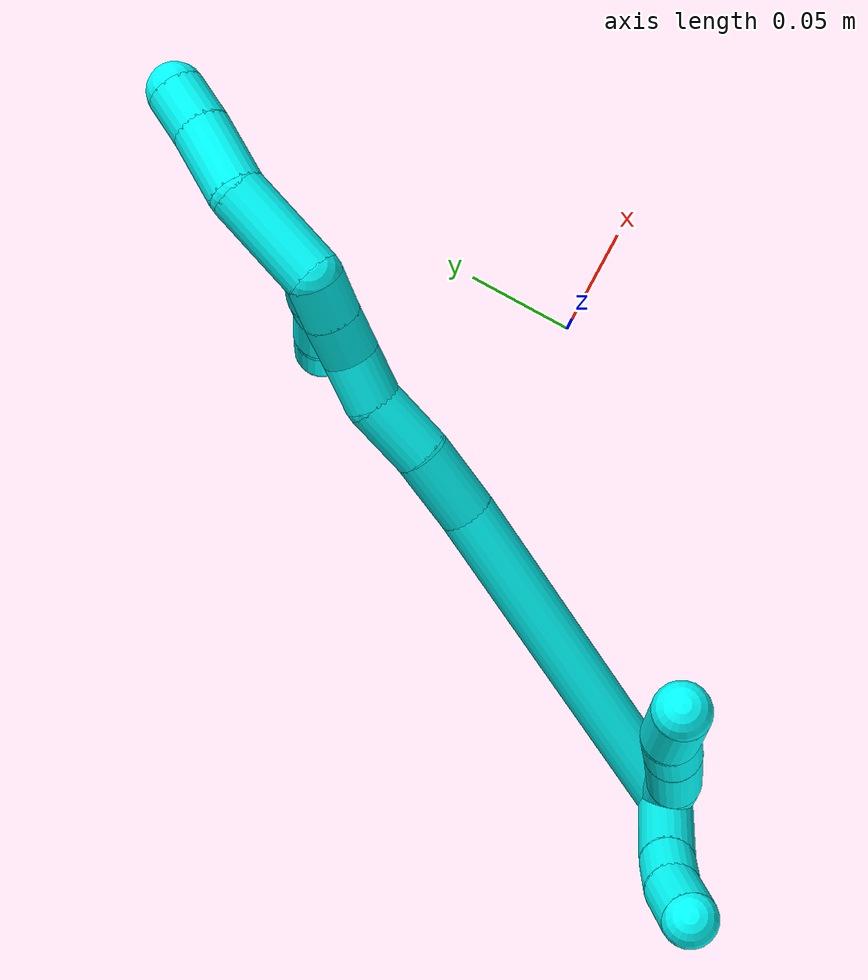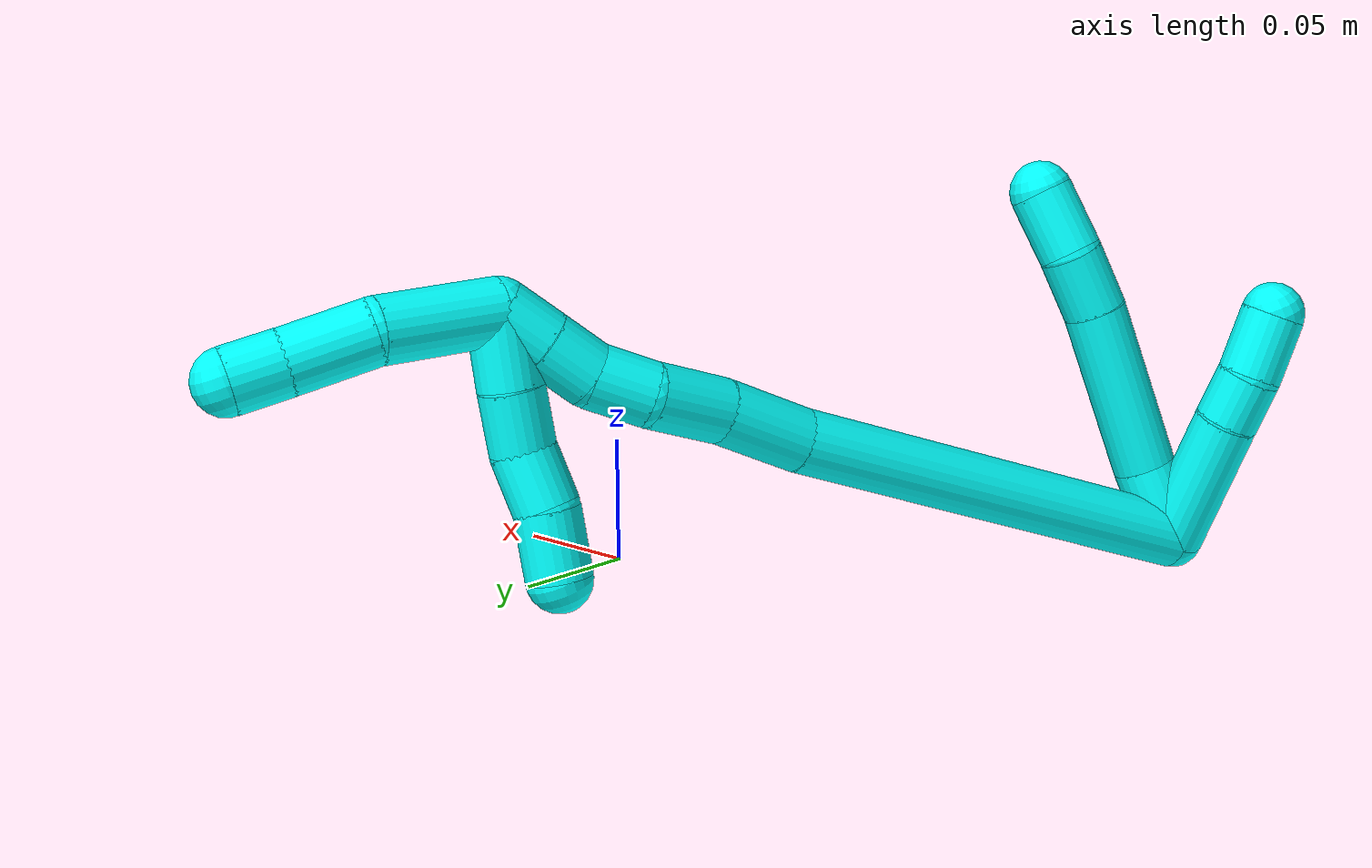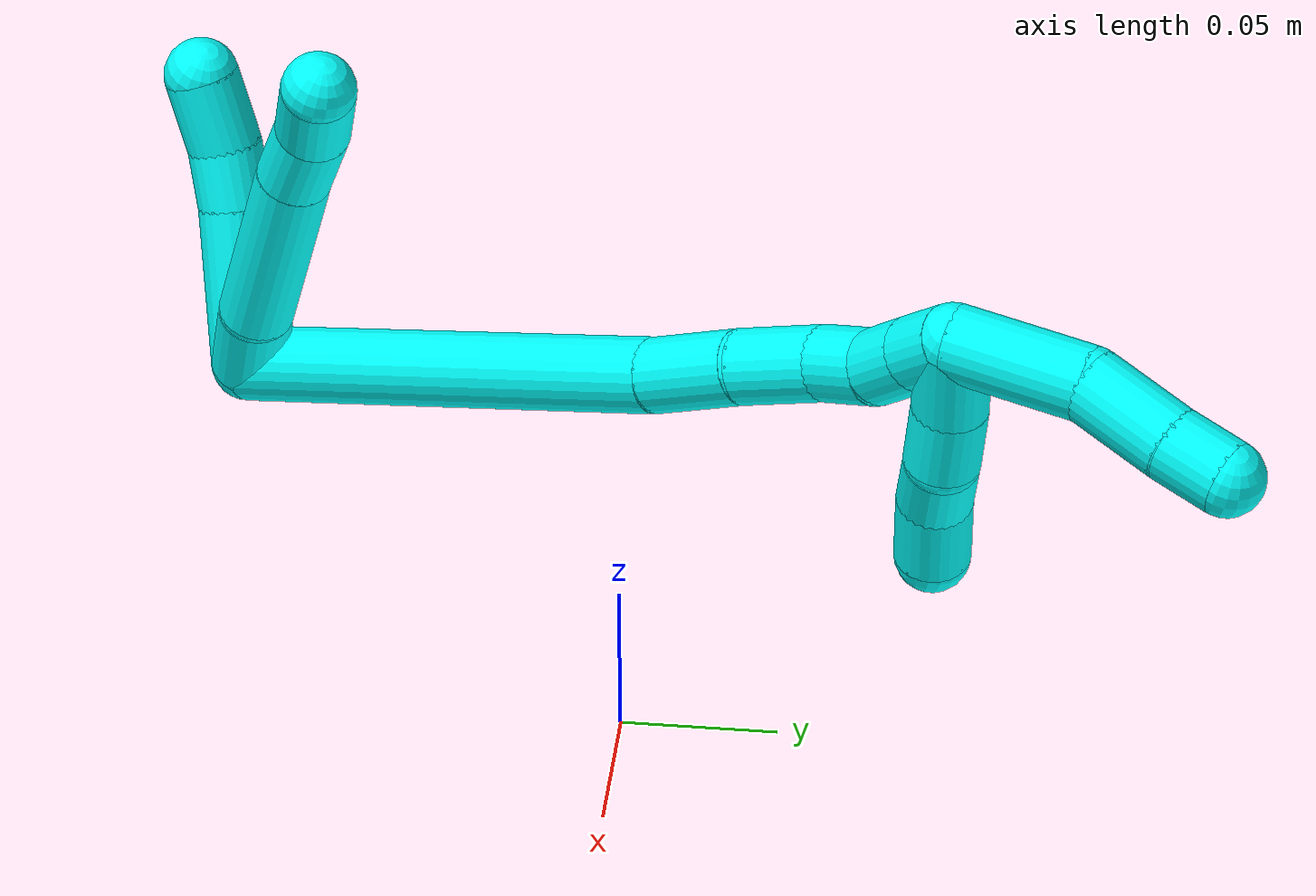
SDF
<sdf version="1.7">
 <world name="default">
  <model name="photoneo_s_sensor">
   <static>1</static>
   <pose>0 0 2 1.57079 1.57079 3.14159</pose>
   <link name="link">
    <inertial><mass>0.1</mass></inertial>
    <sensor name="sensor" type="depth">
     <update_rate>30</update_rate>
     <camera>
      <horizontal_fov>1.22</horizontal_fov>
      <image><width>1920</width><height>1200</height><format>B8G8R8</format></image>
      <clip><near>0.1</near><far>4</far></clip>
      <depth_camera><output>points</output></depth_camera>
     </camera>
     <plugin name="camera_plugin" filename="libgazebo_ros_depth_camera.so">
      <baseline>0.2</baseline>
      <alwaysOn>1</alwaysOn>
      <updateRate>0.0</updateRate>
      <cameraName>camera_ir</cameraName>
      <imageTopicName>/camera/color/image_raw</imageTopicName>
      <cameraInfoTopicName>/camera/color/camera_info</cameraInfoTopicName>
      <depthImageTopicName>/camera/depth/image_raw</depthImageTopicName>
      <depthImageCameraInfoTopicName>/camera/depth/camera_info</depthImageCameraInfoTopicName>
      <pointCloudTopicName>/camera/depth/points</pointCloudTopicName>
      <frameName>fr_optical</frameName>
      <pointCloudCutoff>0.1</pointCloudCutoff>
      <pointCloudCutoffMax>2.0</pointCloudCutoffMax>
      <distortionK1>0</distortionK1>
      <distortionK2>0</distortionK2>
      <distortionK3>0</distortionK3>
      <distortionT1>0</distortionT1>
      <distortionT2>0</distortionT2>
      <CxPrime>0</CxPrime>
      <Cx>0</Cx>
      <Cy>0</Cy>
      <focalLength>0</focalLength>
      <hackBaseline>0</hackBaseline>
     </plugin>
    </sensor>
   </link>
  </model>
  <model name="bin">
   <static>1</static>
   <link name="bottom">
    <collision name="collision-bottom">
     <pose>0 0 -0.01 0 -0 0</pose>
     <geometry><box><size>0.8 0.6 0.02</size></box></geometry>
     <surface>
      <friction><ode><mu>100</mu><mu2>100</mu2></ode></friction>
      <contact><collide_bitmask>65535</collide_bitmask></contact>
     </surface>
    </collision>
   </link>
   <link name="west_wall">
    <collision name="collision-west_wall">
     <pose>-0.41 0 0.1 0 -0 0</pose>
     <geometry><box><size>0.02 0.6 0.2</size></box></geometry>
     <surface>
      <friction><ode><mu>100</mu><mu2>100</mu2></ode></friction>
      <contact><collide_bitmask>65535</collide_bitmask></contact>
     </surface>
    </collision>
   </link>
   <link name="east_wall">
    <collision name="collision-east_wall">
     <pose>0.41 0 0.1 0 -0 0</pose>
     <geometry><box><size>0.02 0.6 0.2</size></box></geometry>
     <surface>
      <friction><ode><mu>100</mu><mu2>100</mu2></ode></friction>
      <contact><collide_bitmask>65535</collide_bitmask></contact>
     </surface>
    </collision>
   </link>
   <link name="south_wall">
    <collision name="collision-south_wall">
     <pose>0 -0.31 0.1 0 -0 0</pose>
     <geometry><box><size>0.8 0.02 0.2</size></box></geometry>
     <surface>
      <friction><ode><mu>100</mu><mu2>100</mu2></ode></friction>
      <contact><collide_bitmask>65535</collide_bitmask></contact>
     </surface>
    </collision>
   </link>
   <link name="north_wall">
    <collision name="collision-north_wall">
     <pose>0 0.31 0.1 0 -0 0</pose>
     <geometry><box><size>0.8 0.02 0.2</size></box></geometry>
     <surface>
      <friction><ode><mu>100</mu><mu2>100</mu2></ode></friction>
      <contact><collide_bitmask>65535</collide_bitmask></contact>
     </surface>
    </collision>
   </link>
  </model>
  <model name="3">
   <static>0</static>
   <link name="3">
    <collision name="collision-cylinder-e_1_2_8">
     <pose>0.002016 -0.000516 0.01525 0.033821 0.131368 0.002225</pose>
     <geometry><cylinder><radius>0.0125</radius><length>0.030782</length></cylinder></geometry>
     <surface>
      <friction><ode><mu>1.16</mu><mu2>1.16</mu2><slip1>0</slip1><slip2>0</slip2></ode></friction>
      <contact><ode><kp>1e+06</kp><kd>1</kd><max_vel>0</max_vel><min_depth>0.001</min_depth></ode></contact>
     </surface>
    </collision>
    <visual name="visual-cylinder-e_1_2_8">
     <pose>0.002016 -0.000516 0.01525 0.033821 0.131368 0.002225</pose>
     <geometry><cylinder><radius>0.0125</radius><length>0.030782</length></cylinder></geometry>
     <material><ambient>0.003922 1 0.996078 1</ambient></material>
    </visual>
    <collision name="collision-cylinder-e_2_8_9">
     <pose>0.002981 -0.000989 0.064379 -0.001255 -0.031009 1.9e-05</pose>
     <geometry><cylinder><radius>0.0125</radius><length>0.067792</length></cylinder></geometry>
     <surface>
      <friction><ode><mu>1.16</mu><mu2>1.16</mu2><slip1>0</slip1><slip2>0</slip2></ode></friction>
      <contact><ode><kp>1e+06</kp><kd>1</kd><max_vel>0</max_vel><min_depth>0.001</min_depth></ode></contact>
     </surface>
    </collision>
    <visual name="visual-cylinder-e_2_8_9">
     <pose>0.002981 -0.000989 0.064379 -0.001255 -0.031009 1.9e-05</pose>
     <geometry><cylinder><radius>0.0125</radius><length>0.067792</length></cylinder></geometry>
     <material><ambient>0.003922 1 0.996078 1</ambient></material>
    </visual>
    <collision name="collision-cylinder-e_3_9_10">
     <pose>0.001983 0.000117 0.110801 -0.084648 0.004217 -0.000179</pose>
     <geometry><cylinder><radius>0.0125</radius><length>0.025174</length></cylinder></geometry>
     <surface>
      <friction><ode><mu>1.16</mu><mu2>1.16</mu2><slip1>0</slip1><slip2>0</slip2></ode></friction>
      <contact><ode><kp>1e+06</kp><kd>1</kd><max_vel>0</max_vel><min_depth>0.001</min_depth></ode></contact>
     </surface>
    </collision>
    <visual name="visual-cylinder-e_3_9_10">
     <pose>0.001983 0.000117 0.110801 -0.084648 0.004217 -0.000179</pose>
     <geometry><cylinder><radius>0.0125</radius><length>0.025174</length></cylinder></geometry>
     <material><ambient>0.003922 1 0.996078 1</ambient></material>
    </visual>
    <collision name="collision-cylinder-e_4_10_6">
     <pose>0.004924 0.001161 0.136147 0.001604 0.221772 0.000179</pose>
     <geometry><cylinder><radius>0.0125</radius><length>0.026252</length></cylinder></geometry>
     <surface>
      <friction><ode><mu>1.16</mu><mu2>1.16</mu2><slip1>0</slip1><slip2>0</slip2></ode></friction>
      <contact><ode><kp>1e+06</kp><kd>1</kd><max_vel>0</max_vel><min_depth>0.001</min_depth></ode></contact>
     </surface>
    </collision>
    <visual name="visual-cylinder-e_4_10_6">
     <pose>0.004924 0.001161 0.136147 0.001604 0.221772 0.000179</pose>
     <geometry><cylinder><radius>0.0125</radius><length>0.026252</length></cylinder></geometry>
     <material><ambient>0.003922 1 0.996078 1</ambient></material>
    </visual>
    <collision name="collision-cylinder-e_1_2_11">
     <pose>-0.012455 -0.012528 0.020229 0.554503 -0.482238 -0.139731</pose>
     <geometry><cylinder><radius>0.0125</radius><length>0.053714</length></cylinder></geometry>
     <surface>
      <friction><ode><mu>1.16</mu><mu2>1.16</mu2><slip1>0</slip1><slip2>0</slip2></ode></friction>
      <contact><ode><kp>1e+06</kp><kd>1</kd><max_vel>0</max_vel><min_depth>0.001</min_depth></ode></contact>
     </surface>
    </collision>
    <visual name="visual-cylinder-e_1_2_11">
     <pose>-0.012455 -0.012528 0.020229 0.554503 -0.482238 -0.139731</pose>
     <geometry><cylinder><radius>0.0125</radius><length>0.053714</length></cylinder></geometry>
     <material><ambient>0.003922 1 0.996078 1</ambient></material>
    </visual>
    <collision name="collision-cylinder-e_2_11_12">
     <pose>-0.029122 -0.030592 0.047939 0.637048 -0.424983 -0.142048</pose>
     <geometry><cylinder><radius>0.0125</radius><length>0.020431</length></cylinder></geometry>
     <surface>
      <friction><ode><mu>1.16</mu><mu2>1.16</mu2><slip1>0</slip1><slip2>0</slip2></ode></friction>
      <contact><ode><kp>1e+06</kp><kd>1</kd><max_vel>0</max_vel><min_depth>0.001</min_depth></ode></contact>
     </surface>
    </collision>
    <visual name="visual-cylinder-e_2_11_12">
     <pose>-0.029122 -0.030592 0.047939 0.637048 -0.424983 -0.142048</pose>
     <geometry><cylinder><radius>0.0125</radius><length>0.020431</length></cylinder></geometry>
     <material><ambient>0.003922 1 0.996078 1</ambient></material>
    </visual>
    <collision name="collision-cylinder-e_3_12_5">
     <pose>-0.03638 -0.043881 0.065307 0.66505 -0.237822 -0.082474</pose>
     <geometry><cylinder><radius>0.0125</radius><length>0.025855</length></cylinder></geometry>
     <surface>
      <friction><ode><mu>1.16</mu><mu2>1.16</mu2><slip1>0</slip1><slip2>0</slip2></ode></friction>
      <contact><ode><kp>1e+06</kp><kd>1</kd><max_vel>0</max_vel><min_depth>0.001</min_depth></ode></contact>
     </surface>
    </collision>
    <visual name="visual-cylinder-e_3_12_5">
     <pose>-0.03638 -0.043881 0.065307 0.66505 -0.237822 -0.082474</pose>
     <geometry><cylinder><radius>0.0125</radius><length>0.025855</length></cylinder></geometry>
     <material><ambient>0.003922 1 0.996078 1</ambient></material>
    </visual>
    <collision name="collision-cylinder-e_1_2_13">
     <pose>0.006712 0.067683 0.051534 -0.920035 0.078734 -0.039025</pose>
     <geometry><cylinder><radius>0.0125</radius><length>0.170667</length></cylinder></geometry>
     <surface>
      <friction><ode><mu>1.16</mu><mu2>1.16</mu2><slip1>0</slip1><slip2>0</slip2></ode></friction>
      <contact><ode><kp>1e+06</kp><kd>1</kd><max_vel>0</max_vel><min_depth>0.001</min_depth></ode></contact>
     </surface>
    </collision>
    <visual name="visual-cylinder-e_1_2_13">
     <pose>0.006712 0.067683 0.051534 -0.920035 0.078734 -0.039025</pose>
     <geometry><cylinder><radius>0.0125</radius><length>0.170667</length></cylinder></geometry>
     <material><ambient>0.003922 1 0.996078 1</ambient></material>
    </visual>
    <collision name="collision-cylinder-e_2_13_14">
     <pose>0.013766 0.148278 0.114772 -0.834463 0.019671 -0.00872</pose>
     <geometry><cylinder><radius>0.0125</radius><length>0.034861</length></cylinder></geometry>
     <surface>
      <friction><ode><mu>1.16</mu><mu2>1.16</mu2><slip1>0</slip1><slip2>0</slip2></ode></friction>
      <contact><ode><kp>1e+06</kp><kd>1</kd><max_vel>0</max_vel><min_depth>0.001</min_depth></ode></contact>
     </surface>
    </collision>
    <visual name="visual-cylinder-e_2_13_14">
     <pose>0.013766 0.148278 0.114772 -0.834463 0.019671 -0.00872</pose>
     <geometry><cylinder><radius>0.0125</radius><length>0.034861</length></cylinder></geometry>
     <material><ambient>0.003922 1 0.996078 1</ambient></material>
    </visual>
    <collision name="collision-cylinder-e_3_14_15">
     <pose>0.013198 0.17371 0.135347 -0.954323 -0.059294 0.030662</pose>
     <geometry><cylinder><radius>0.0125</radius><length>0.030744</length></cylinder></geometry>
     <surface>
      <friction><ode><mu>1.16</mu><mu2>1.16</mu2><slip1>0</slip1><slip2>0</slip2></ode></friction>
      <contact><ode><kp>1e+06</kp><kd>1</kd><max_vel>0</max_vel><min_depth>0.001</min_depth></ode></contact>
     </surface>
    </collision>
    <visual name="visual-cylinder-e_3_14_15">
     <pose>0.013198 0.17371 0.135347 -0.954323 -0.059294 0.030662</pose>
     <geometry><cylinder><radius>0.0125</radius><length>0.030744</length></cylinder></geometry>
     <material><ambient>0.003922 1 0.996078 1</ambient></material>
    </visual>
    <collision name="collision-cylinder-e_4_15_16">
     <pose>0.014722 0.194584 0.151631 -0.845076 0.214698 -0.096829</pose>
     <geometry><cylinder><radius>0.0125</radius><length>0.02286</length></cylinder></geometry>
     <surface>
      <friction><ode><mu>1.16</mu><mu2>1.16</mu2><slip1>0</slip1><slip2>0</slip2></ode></friction>
      <contact><ode><kp>1e+06</kp><kd>1</kd><max_vel>0</max_vel><min_depth>0.001</min_depth></ode></contact>
     </surface>
    </collision>
    <visual name="visual-cylinder-e_4_15_16">
     <pose>0.014722 0.194584 0.151631 -0.845076 0.214698 -0.096829</pose>
     <geometry><cylinder><radius>0.0125</radius><length>0.02286</length></cylinder></geometry>
     <material><ambient>0.003922 1 0.996078 1</ambient></material>
    </visual>
    <collision name="collision-cylinder-e_5_16_17">
     <pose>0.018529 0.208397 0.167677 -0.563741 0.133462 -0.038701</pose>
     <geometry><cylinder><radius>0.0125</radius><length>0.020615</length></cylinder></geometry>
     <surface>
      <friction><ode><mu>1.16</mu><mu2>1.16</mu2><slip1>0</slip1><slip2>0</slip2></ode></friction>
      <contact><ode><kp>1e+06</kp><kd>1</kd><max_vel>0</max_vel><min_depth>0.001</min_depth></ode></contact>
     </surface>
    </collision>
    <visual name="visual-cylinder-e_5_16_17">
     <pose>0.018529 0.208397 0.167677 -0.563741 0.133462 -0.038701</pose>
     <geometry><cylinder><radius>0.0125</radius><length>0.020615</length></cylinder></geometry>
     <material><ambient>0.003922 1 0.996078 1</ambient></material>
    </visual>
    <collision name="collision-cylinder-e_6_17_1">
     <pose>0.021578 0.219151 0.18478 -0.558913 0.166387 -0.047849</pose>
     <geometry><cylinder><radius>0.0125</radius><length>0.020254</length></cylinder></geometry>
     <surface>
      <friction><ode><mu>1.16</mu><mu2>1.16</mu2><slip1>0</slip1><slip2>0</slip2></ode></friction>
      <contact><ode><kp>1e+06</kp><kd>1</kd><max_vel>0</max_vel><min_depth>0.001</min_depth></ode></contact>
     </surface>
    </collision>
    <visual name="visual-cylinder-e_6_17_1">
     <pose>0.021578 0.219151 0.18478 -0.558913 0.166387 -0.047849</pose>
     <geometry><cylinder><radius>0.0125</radius><length>0.020254</length></cylinder></geometry>
     <material><ambient>0.003922 1 0.996078 1</ambient></material>
    </visual>
    <collision name="collision-cylinder-e_1_1_18">
     <pose>0.02371 0.246918 0.198943 -1.32255 0.019618 -0.015266</pose>
     <geometry><cylinder><radius>0.0125</radius><length>0.046372</length></cylinder></geometry>
     <surface>
      <friction><ode><mu>1.16</mu><mu2>1.16</mu2><slip1>0</slip1><slip2>0</slip2></ode></friction>
      <contact><ode><kp>1e+06</kp><kd>1</kd><max_vel>0</max_vel><min_depth>0.001</min_depth></ode></contact>
     </surface>
    </collision>
    <visual name="visual-cylinder-e_1_1_18">
     <pose>0.02371 0.246918 0.198943 -1.32255 0.019618 -0.015266</pose>
     <geometry><cylinder><radius>0.0125</radius><length>0.046372</length></cylinder></geometry>
     <material><ambient>0.003922 1 0.996078 1</ambient></material>
    </visual>
    <collision name="collision-cylinder-e_2_18_19">
     <pose>0.028386 0.285172 0.205499 -1.51633 0.260967 -0.247271</pose>
     <geometry><cylinder><radius>0.0125</radius><length>0.03272</length></cylinder></geometry>
     <surface>
      <friction><ode><mu>1.16</mu><mu2>1.16</mu2><slip1>0</slip1><slip2>0</slip2></ode></friction>
      <contact><ode><kp>1e+06</kp><kd>1</kd><max_vel>0</max_vel><min_depth>0.001</min_depth></ode></contact>
     </surface>
    </collision>
    <visual name="visual-cylinder-e_2_18_19">
     <pose>0.028386 0.285172 0.205499 -1.51633 0.260967 -0.247271</pose>
     <geometry><cylinder><radius>0.0125</radius><length>0.03272</length></cylinder></geometry>
     <material><ambient>0.003922 1 0.996078 1</ambient></material>
    </visual>
    <collision name="collision-cylinder-e_3_19_4">
     <pose>0.034624 0.311178 0.207191 -1.48964 0.194195 -0.179125</pose>
     <geometry><cylinder><radius>0.0125</radius><length>0.020907</length></cylinder></geometry>
     <surface>
      <friction><ode><mu>1.16</mu><mu2>1.16</mu2><slip1>0</slip1><slip2>0</slip2></ode></friction>
      <contact><ode><kp>1e+06</kp><kd>1</kd><max_vel>0</max_vel><min_depth>0.001</min_depth></ode></contact>
     </surface>
    </collision>
    <visual name="visual-cylinder-e_3_19_4">
     <pose>0.034624 0.311178 0.207191 -1.48964 0.194195 -0.179125</pose>
     <geometry><cylinder><radius>0.0125</radius><length>0.020907</length></cylinder></geometry>
     <material><ambient>0.003922 1 0.996078 1</ambient></material>
    </visual>
    <collision name="collision-cylinder-e_1_1_20">
     <pose>0.023707 0.227518 0.1796 -2.92028 0.032298 -0.288695</pose>
     <geometry><cylinder><radius>0.0125</radius><length>0.027991</length></cylinder></geometry>
     <surface>
      <friction><ode><mu>1.16</mu><mu2>1.16</mu2><slip1>0</slip1><slip2>0</slip2></ode></friction>
      <contact><ode><kp>1e+06</kp><kd>1</kd><max_vel>0</max_vel><min_depth>0.001</min_depth></ode></contact>
     </surface>
    </collision>
    <visual name="visual-cylinder-e_1_1_20">
     <pose>0.023707 0.227518 0.1796 -2.92028 0.032298 -0.288695</pose>
     <geometry><cylinder><radius>0.0125</radius><length>0.027991</length></cylinder></geometry>
     <material><ambient>0.003922 1 0.996078 1</ambient></material>
    </visual>
    <collision name="collision-cylinder-e_2_20_21">
     <pose>0.025232 0.232461 0.154484 -2.97974 0.09205 -1.03295</pose>
     <geometry><cylinder><radius>0.0125</radius><length>0.02334</length></cylinder></geometry>
     <surface>
      <friction><ode><mu>1.16</mu><mu2>1.16</mu2><slip1>0</slip1><slip2>0</slip2></ode></friction>
      <contact><ode><kp>1e+06</kp><kd>1</kd><max_vel>0</max_vel><min_depth>0.001</min_depth></ode></contact>
     </surface>
    </collision>
    <visual name="visual-cylinder-e_2_20_21">
     <pose>0.025232 0.232461 0.154484 -2.97974 0.09205 -1.03295</pose>
     <geometry><cylinder><radius>0.0125</radius><length>0.02334</length></cylinder></geometry>
     <material><ambient>0.003922 1 0.996078 1</ambient></material>
    </visual>
    <collision name="collision-cylinder-e_3_21_22">
     <pose>0.024312 0.234972 0.131938 -3.08398 -0.177634 2.51566</pose>
     <geometry><cylinder><radius>0.0125</radius><length>0.022547</length></cylinder></geometry>
     <surface>
      <friction><ode><mu>1.16</mu><mu2>1.16</mu2><slip1>0</slip1><slip2>0</slip2></ode></friction>
      <contact><ode><kp>1e+06</kp><kd>1</kd><max_vel>0</max_vel><min_depth>0.001</min_depth></ode></contact>
     </surface>
    </collision>
    <visual name="visual-cylinder-e_3_21_22">
     <pose>0.024312 0.234972 0.131938 -3.08398 -0.177634 2.51566</pose>
     <geometry><cylinder><radius>0.0125</radius><length>0.022547</length></cylinder></geometry>
     <material><ambient>0.003922 1 0.996078 1</ambient></material>
    </visual>
    <collision name="collision-cylinder-e_4_22_3">
     <pose>0.022236 0.238347 0.108089 -2.93059 -0.006496 0.061328</pose>
     <geometry><cylinder><radius>0.0125</radius><length>0.026123</length></cylinder></geometry>
     <surface>
      <friction><ode><mu>1.16</mu><mu2>1.16</mu2><slip1>0</slip1><slip2>0</slip2></ode></friction>
      <contact><ode><kp>1e+06</kp><kd>1</kd><max_vel>0</max_vel><min_depth>0.001</min_depth></ode></contact>
     </surface>
    </collision>
    <visual name="visual-cylinder-e_4_22_3">
     <pose>0.022236 0.238347 0.108089 -2.93059 -0.006496 0.061328</pose>
     <geometry><cylinder><radius>0.0125</radius><length>0.026123</length></cylinder></geometry>
     <material><ambient>0.003922 1 0.996078 1</ambient></material>
    </visual>
    <collision name="collision-sphere-3">
     <pose>0.022151 0.241082 0.095318 0 -0 0</pose>
     <geometry><sphere><radius>0.0125</radius></sphere></geometry>
     <surface>
      <friction><ode><mu>1.16</mu><mu2>1.16</mu2><slip1>0</slip1><slip2>0</slip2></ode></friction>
      <contact><ode><kp>1e+06</kp><kd>1</kd><max_vel>0</max_vel><min_depth>0.001</min_depth></ode></contact>
     </surface>
    </collision>
    <visual name="visual-sphere-3">
     <pose>0.022151 0.241082 0.095318 0 -0 0</pose>
     <geometry><sphere><radius>0.0125</radius></sphere></geometry>
     <material><ambient>0.003922 1 0.996078 1</ambient></material>
    </visual>
    <collision name="collision-sphere-22">
     <pose>0.02232 0.235611 0.120861 0 -0 0</pose>
     <geometry><sphere><radius>0.0125</radius></sphere></geometry>
     <surface>
      <friction><ode><mu>1.16</mu><mu2>1.16</mu2><slip1>0</slip1><slip2>0</slip2></ode></friction>
      <contact><ode><kp>1e+06</kp><kd>1</kd><max_vel>0</max_vel><min_depth>0.001</min_depth></ode></contact>
     </surface>
    </collision>
    <visual name="visual-sphere-22">
     <pose>0.02232 0.235611 0.120861 0 -0 0</pose>
     <geometry><sphere><radius>0.0125</radius></sphere></geometry>
     <material><ambient>0.003922 1 0.996078 1</ambient></material>
    </visual>
    <collision name="collision-sphere-21">
     <pose>0.026304 0.234333 0.143016 0 -0 0</pose>
     <geometry><sphere><radius>0.0125</radius></sphere></geometry>
     <surface>
      <friction><ode><mu>1.16</mu><mu2>1.16</mu2><slip1>0</slip1><slip2>0</slip2></ode></friction>
      <contact><ode><kp>1e+06</kp><kd>1</kd><max_vel>0</max_vel><min_depth>0.001</min_depth></ode></contact>
     </surface>
    </collision>
    <visual name="visual-sphere-21">
     <pose>0.026304 0.234333 0.143016 0 -0 0</pose>
     <geometry><sphere><radius>0.0125</radius></sphere></geometry>
     <material><ambient>0.003922 1 0.996078 1</ambient></material>
    </visual>
    <collision name="collision-sphere-20">
     <pose>0.024159 0.230588 0.165953 0 -0 0</pose>
     <geometry><sphere><radius>0.0125</radius></sphere></geometry>
     <surface>
      <friction><ode><mu>1.16</mu><mu2>1.16</mu2><slip1>0</slip1><slip2>0</slip2></ode></friction>
      <contact><ode><kp>1e+06</kp><kd>1</kd><max_vel>0</max_vel><min_depth>0.001</min_depth></ode></contact>
     </surface>
    </collision>
    <visual name="visual-sphere-20">
     <pose>0.024159 0.230588 0.165953 0 -0 0</pose>
     <geometry><sphere><radius>0.0125</radius></sphere></geometry>
     <material><ambient>0.003922 1 0.996078 1</ambient></material>
    </visual>
    <collision name="collision-sphere-4">
     <pose>0.036642 0.321402 0.208023 0 -0 0</pose>
     <geometry><sphere><radius>0.0125</radius></sphere></geometry>
     <surface>
      <friction><ode><mu>1.16</mu><mu2>1.16</mu2><slip1>0</slip1><slip2>0</slip2></ode></friction>
      <contact><ode><kp>1e+06</kp><kd>1</kd><max_vel>0</max_vel><min_depth>0.001</min_depth></ode></contact>
     </surface>
    </collision>
    <visual name="visual-sphere-4">
     <pose>0.036642 0.321402 0.208023 0 -0 0</pose>
     <geometry><sphere><radius>0.0125</radius></sphere></geometry>
     <material><ambient>0.003922 1 0.996078 1</ambient></material>
    </visual>
    <collision name="collision-sphere-11">
     <pose>-0.024911 -0.025056 0.040458 0 -0 0</pose>
     <geometry><sphere><radius>0.0125</radius></sphere></geometry>
     <surface>
      <friction><ode><mu>1.16</mu><mu2>1.16</mu2><slip1>0</slip1><slip2>0</slip2></ode></friction>
      <contact><ode><kp>1e+06</kp><kd>1</kd><max_vel>0</max_vel><min_depth>0.001</min_depth></ode></contact>
     </surface>
    </collision>
    <visual name="visual-sphere-11">
     <pose>-0.024911 -0.025056 0.040458 0 -0 0</pose>
     <geometry><sphere><radius>0.0125</radius></sphere></geometry>
     <material><ambient>0.003922 1 0.996078 1</ambient></material>
    </visual>
    <collision name="collision-sphere-6">
     <pose>0.007811 0.00114 0.148951 0 -0 0</pose>
     <geometry><sphere><radius>0.0125</radius></sphere></geometry>
     <surface>
      <friction><ode><mu>1.16</mu><mu2>1.16</mu2><slip1>0</slip1><slip2>0</slip2></ode></friction>
      <contact><ode><kp>1e+06</kp><kd>1</kd><max_vel>0</max_vel><min_depth>0.001</min_depth></ode></contact>
     </surface>
    </collision>
    <visual name="visual-sphere-6">
     <pose>0.007811 0.00114 0.148951 0 -0 0</pose>
     <geometry><sphere><radius>0.0125</radius></sphere></geometry>
     <material><ambient>0.003922 1 0.996078 1</ambient></material>
    </visual>
    <collision name="collision-sphere-10">
     <pose>0.002036 0.001182 0.123342 0 -0 0</pose>
     <geometry><sphere><radius>0.0125</radius></sphere></geometry>
     <surface>
      <friction><ode><mu>1.16</mu><mu2>1.16</mu2><slip1>0</slip1><slip2>0</slip2></ode></friction>
      <contact><ode><kp>1e+06</kp><kd>1</kd><max_vel>0</max_vel><min_depth>0.001</min_depth></ode></contact>
     </surface>
    </collision>
    <visual name="visual-sphere-10">
     <pose>0.002036 0.001182 0.123342 0 -0 0</pose>
     <geometry><sphere><radius>0.0125</radius></sphere></geometry>
     <material><ambient>0.003922 1 0.996078 1</ambient></material>
    </visual>
    <collision name="collision-sphere-9">
     <pose>0.00193 -0.000947 0.098259 0 -0 0</pose>
     <geometry><sphere><radius>0.0125</radius></sphere></geometry>
     <surface>
      <friction><ode><mu>1.16</mu><mu2>1.16</mu2><slip1>0</slip1><slip2>0</slip2></ode></friction>
      <contact><ode><kp>1e+06</kp><kd>1</kd><max_vel>0</max_vel><min_depth>0.001</min_depth></ode></contact>
     </surface>
    </collision>
    <visual name="visual-sphere-9">
     <pose>0.00193 -0.000947 0.098259 0 -0 0</pose>
     <geometry><sphere><radius>0.0125</radius></sphere></geometry>
     <material><ambient>0.003922 1 0.996078 1</ambient></material>
    </visual>
    <collision name="collision-sphere-2">
     <geometry><sphere><radius>0.0125</radius></sphere></geometry>
     <surface>
      <friction><ode><mu>1.16</mu><mu2>1.16</mu2><slip1>0</slip1><slip2>0</slip2></ode></friction>
      <contact><ode><kp>1e+06</kp><kd>1</kd><max_vel>0</max_vel><min_depth>0.001</min_depth></ode></contact>
     </surface>
    </collision>
    <visual name="visual-sphere-2">
     <geometry><sphere><radius>0.0125</radius></sphere></geometry>
     <material><ambient>0.003922 1 0.996078 1</ambient></material>
    </visual>
    <collision name="collision-sphere-19">
     <pose>0.032607 0.300955 0.20636 0 -0 0</pose>
     <geometry><sphere><radius>0.0125</radius></sphere></geometry>
     <surface>
      <friction><ode><mu>1.16</mu><mu2>1.16</mu2><slip1>0</slip1><slip2>0</slip2></ode></friction>
      <contact><ode><kp>1e+06</kp><kd>1</kd><max_vel>0</max_vel><min_depth>0.001</min_depth></ode></contact>
     </surface>
    </collision>
    <visual name="visual-sphere-19">
     <pose>0.032607 0.300955 0.20636 0 -0 0</pose>
     <geometry><sphere><radius>0.0125</radius></sphere></geometry>
     <material><ambient>0.003922 1 0.996078 1</ambient></material>
    </visual>
    <collision name="collision-sphere-8">
     <pose>0.004032 -0.001032 0.030499 0 -0 0</pose>
     <geometry><sphere><radius>0.0125</radius></sphere></geometry>
     <surface>
      <friction><ode><mu>1.16</mu><mu2>1.16</mu2><slip1>0</slip1><slip2>0</slip2></ode></friction>
      <contact><ode><kp>1e+06</kp><kd>1</kd><max_vel>0</max_vel><min_depth>0.001</min_depth></ode></contact>
     </surface>
    </collision>
    <visual name="visual-sphere-8">
     <pose>0.004032 -0.001032 0.030499 0 -0 0</pose>
     <geometry><sphere><radius>0.0125</radius></sphere></geometry>
     <material><ambient>0.003922 1 0.996078 1</ambient></material>
    </visual>
    <collision name="collision-sphere-12">
     <pose>-0.033334 -0.036128 0.05542 0 -0 0</pose>
     <geometry><sphere><radius>0.0125</radius></sphere></geometry>
     <surface>
      <friction><ode><mu>1.16</mu><mu2>1.16</mu2><slip1>0</slip1><slip2>0</slip2></ode></friction>
      <contact><ode><kp>1e+06</kp><kd>1</kd><max_vel>0</max_vel><min_depth>0.001</min_depth></ode></contact>
     </surface>
    </collision>
    <visual name="visual-sphere-12">
     <pose>-0.033334 -0.036128 0.05542 0 -0 0</pose>
     <geometry><sphere><radius>0.0125</radius></sphere></geometry>
     <material><ambient>0.003922 1 0.996078 1</ambient></material>
    </visual>
    <collision name="collision-sphere-5">
     <pose>-0.039425 -0.051634 0.075193 0 -0 0</pose>
     <geometry><sphere><radius>0.0125</radius></sphere></geometry>
     <surface>
      <friction><ode><mu>1.16</mu><mu2>1.16</mu2><slip1>0</slip1><slip2>0</slip2></ode></friction>
      <contact><ode><kp>1e+06</kp><kd>1</kd><max_vel>0</max_vel><min_depth>0.001</min_depth></ode></contact>
     </surface>
    </collision>
    <visual name="visual-sphere-5">
     <pose>-0.039425 -0.051634 0.075193 0 -0 0</pose>
     <geometry><sphere><radius>0.0125</radius></sphere></geometry>
     <material><ambient>0.003922 1 0.996078 1</ambient></material>
    </visual>
    <collision name="collision-sphere-13">
     <pose>0.013423 0.135366 0.103068 0 -0 0</pose>
     <geometry><sphere><radius>0.0125</radius></sphere></geometry>
     <surface>
      <friction><ode><mu>1.16</mu><mu2>1.16</mu2><slip1>0</slip1><slip2>0</slip2></ode></friction>
      <contact><ode><kp>1e+06</kp><kd>1</kd><max_vel>0</max_vel><min_depth>0.001</min_depth></ode></contact>
     </surface>
    </collision>
    <visual name="visual-sphere-13">
     <pose>0.013423 0.135366 0.103068 0 -0 0</pose>
     <geometry><sphere><radius>0.0125</radius></sphere></geometry>
     <material><ambient>0.003922 1 0.996078 1</ambient></material>
    </visual>
    <collision name="collision-sphere-14">
     <pose>0.014109 0.16119 0.126475 0 -0 0</pose>
     <geometry><sphere><radius>0.0125</radius></sphere></geometry>
     <surface>
      <friction><ode><mu>1.16</mu><mu2>1.16</mu2><slip1>0</slip1><slip2>0</slip2></ode></friction>
      <contact><ode><kp>1e+06</kp><kd>1</kd><max_vel>0</max_vel><min_depth>0.001</min_depth></ode></contact>
     </surface>
    </collision>
    <visual name="visual-sphere-14">
     <pose>0.014109 0.16119 0.126475 0 -0 0</pose>
     <geometry><sphere><radius>0.0125</radius></sphere></geometry>
     <material><ambient>0.003922 1 0.996078 1</ambient></material>
    </visual>
    <collision name="collision-sphere-15">
     <pose>0.012287 0.186231 0.144219 0 -0 0</pose>
     <geometry><sphere><radius>0.0125</radius></sphere></geometry>
     <surface>
      <friction><ode><mu>1.16</mu><mu2>1.16</mu2><slip1>0</slip1><slip2>0</slip2></ode></friction>
      <contact><ode><kp>1e+06</kp><kd>1</kd><max_vel>0</max_vel><min_depth>0.001</min_depth></ode></contact>
     </surface>
    </collision>
    <visual name="visual-sphere-15">
     <pose>0.012287 0.186231 0.144219 0 -0 0</pose>
     <geometry><sphere><radius>0.0125</radius></sphere></geometry>
     <material><ambient>0.003922 1 0.996078 1</ambient></material>
    </visual>
    <collision name="collision-sphere-16">
     <pose>0.017157 0.202938 0.159042 0 -0 0</pose>
     <geometry><sphere><radius>0.0125</radius></sphere></geometry>
     <surface>
      <friction><ode><mu>1.16</mu><mu2>1.16</mu2><slip1>0</slip1><slip2>0</slip2></ode></friction>
      <contact><ode><kp>1e+06</kp><kd>1</kd><max_vel>0</max_vel><min_depth>0.001</min_depth></ode></contact>
     </surface>
    </collision>
    <visual name="visual-sphere-16">
     <pose>0.017157 0.202938 0.159042 0 -0 0</pose>
     <geometry><sphere><radius>0.0125</radius></sphere></geometry>
     <material><ambient>0.003922 1 0.996078 1</ambient></material>
    </visual>
    <collision name="collision-sphere-17">
     <pose>0.019901 0.213855 0.176312 0 -0 0</pose>
     <geometry><sphere><radius>0.0125</radius></sphere></geometry>
     <surface>
      <friction><ode><mu>1.16</mu><mu2>1.16</mu2><slip1>0</slip1><slip2>0</slip2></ode></friction>
      <contact><ode><kp>1e+06</kp><kd>1</kd><max_vel>0</max_vel><min_depth>0.001</min_depth></ode></contact>
     </surface>
    </collision>
    <visual name="visual-sphere-17">
     <pose>0.019901 0.213855 0.176312 0 -0 0</pose>
     <geometry><sphere><radius>0.0125</radius></sphere></geometry>
     <material><ambient>0.003922 1 0.996078 1</ambient></material>
    </visual>
    <collision name="collision-sphere-1">
     <pose>0.023255 0.224447 0.193247 0 -0 0</pose>
     <geometry><sphere><radius>0.0125</radius></sphere></geometry>
     <surface>
      <friction><ode><mu>1.16</mu><mu2>1.16</mu2><slip1>0</slip1><slip2>0</slip2></ode></friction>
      <contact><ode><kp>1e+06</kp><kd>1</kd><max_vel>0</max_vel><min_depth>0.001</min_depth></ode></contact>
     </surface>
    </collision>
    <visual name="visual-sphere-1">
     <pose>0.023255 0.224447 0.193247 0 -0 0</pose>
     <geometry><sphere><radius>0.0125</radius></sphere></geometry>
     <material><ambient>0.003922 1 0.996078 1</ambient></material>
    </visual>
    <collision name="collision-sphere-18">
     <pose>0.024165 0.269389 0.204639 0 -0 0</pose>
     <geometry><sphere><radius>0.0125</radius></sphere></geometry>
     <surface>
      <friction><ode><mu>1.16</mu><mu2>1.16</mu2><slip1>0</slip1><slip2>0</slip2></ode></friction>
      <contact><ode><kp>1e+06</kp><kd>1</kd><max_vel>0</max_vel><min_depth>0.001</min_depth></ode></contact>
     </surface>
    </collision>
    <visual name="visual-sphere-18">
     <pose>0.024165 0.269389 0.204639 0 -0 0</pose>
     <geometry><sphere><radius>0.0125</radius></sphere></geometry>
     <material><ambient>0.003922 1 0.996078 1</ambient></material>
    </visual>
    <inertial>
     <pose>0.008745 0.111156 0.103049 0 -0 0</pose>
     <mass>0.75</mass>
     <inertia>
      <ixx>0.000486</ixx>
      <ixy>0</ixy>
      <ixz>0</ixz>
      <iyy>0.000318</iyy>
      <iyz>0</iyz>
      <izz>-0.000352</izz>
     </inertia>
    </inertial>
   </link>
   <pose>-0.170329 -0.143695 0.011698 -0.302121 0.169156 -0.324169</pose>
  </model>
 </world>
</sdf>
